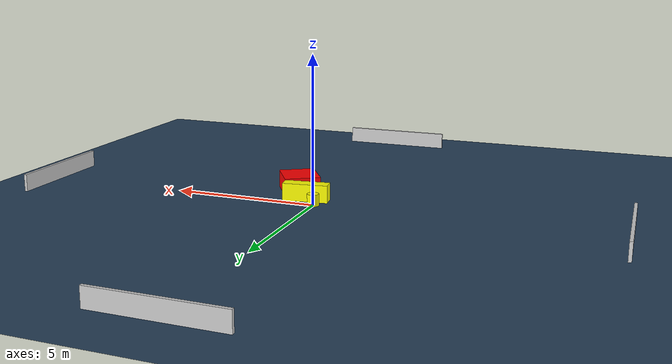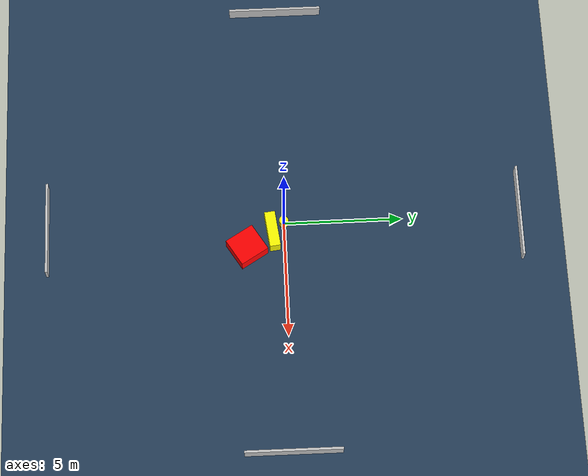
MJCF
<?xml version="1.0" ?>
<mujoco model="generated_environment">
  <option timestep="0.01" integrator="RK4" cone="elliptic"/>
  <default>
    <geom density="1"/>
  </default>
  <asset>
    <texture builtin="gradient" height="3072" name="skybox" rgb1="0.3 0.5 0.7" rgb2="0 0 0" type="skybox" width="512"/>
    <texture builtin="checker" height="300" name="groundplane" rgb1="0.2 0.3 0.4" rgb2="0.1 0.2 0.3" type="2d" width="300"/>
    <material name="groundplane" reflectance="0.2" texrepeat="5 5" texture="groundplane"/>
  </asset>
  <worldbody>
    <light dir="0 0 -1" directional="true" pos="0 0 1.5"/>
    <geom condim="3" friction="0.5 0.005 0.001" material="groundplane" name="floor" pos="0 0 0" size="0 0 0.05" type="plane"/>
    <body name="walls">
      <geom name="wall_1" condim="4" pos="-10.0 0.0 0.3" rgba="0.800000011920929 0.800000011920929 0.800000011920929 1.0" size="0.05 2.0 0.3" type="box"/>
      <geom name="wall_2" condim="4" pos="10.0 0.0 0.3" rgba="0.800000011920929 0.800000011920929 0.800000011920929 1.0" size="0.05 2.0 0.3" type="box"/>
      <geom name="wall_3" condim="4" pos="0.0 -10.0 0.3" rgba="0.800000011920929 0.800000011920929 0.800000011920929 1.0" size="2.0 0.05 0.3" type="box"/>
      <geom name="wall_4" condim="4" pos="0.0 10.0 0.3" rgba="0.800000011920929 0.800000011920929 0.800000011920929 1.0" size="2.0 0.05 0.3" type="box"/>
    </body>
    <body name="robot">
      <joint name="joint_x" type="slide" pos="0 0 0" axis="1 0 0"/>
      <joint name="joint_y" type="slide" pos="0 0 0" axis="0 1 0"/>
      <geom name="robot" type="cylinder" pos="0.0 0.0 0.2" size="0.2 0.2 0.0" mass="5.0" friction="1.0 0.005 0.0001" condim="4" rgba="1.0 1.0 0.0 1.0"/>
    </body>
    <body name="obstacle_1_movable">
      <geom name="obstacle_1_movable" condim="4" pos="0.4369209235508215 -0.4940344794694268 0.3" euler="0 0 187.13246844078154" friction="0.0 0.005 0.001" rgba="1.0 1.0 0.0 1.0" size="0.775350046472181 0.2264274525812369 0.3" type="box" mass="0.1"/>
      <joint type="free"/>
    </body>
    <body name="obstacle_2_static">
      <geom name="obstacle_2_static" condim="4" pos="1.1124892997228755 -1.5885197053383384 0.3" euler="0 0 121.5694529167046" friction="0.0 0.005 0.001" rgba="1.0 0.0 0.0 1.0" size="0.6532741768546323 0.6239799402671224 0.3" type="box"/>
    </body>
  </worldbody>
  <actuator>
    <motor name="actuator_x" joint="joint_x" gear="1" ctrlrange="-1 1"/>
    <motor name="actuator_y" joint="joint_y" gear="1" ctrlrange="-1 1"/>
  </actuator>
</mujoco>
